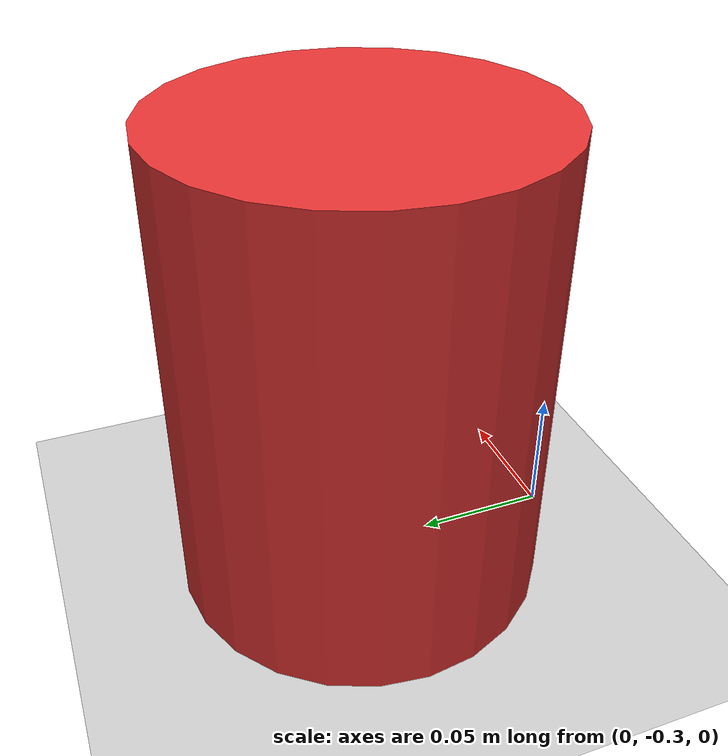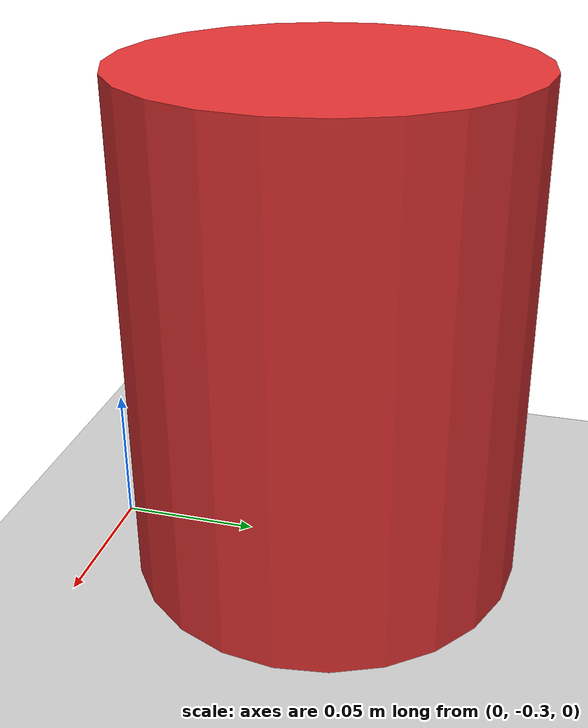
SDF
<?xml version="1.0" ?>
<sdf version="1.10">
  <world name="obstacle_world">
    <physics name="1ms" type="ignored">
      <max_step_size>0.001</max_step_size>
      <real_time_factor>1.0</real_time_factor>
    </physics>
    <plugin filename="gz-sim-physics-system" name="gz::sim::systems::Physics"></plugin>
    <plugin filename="gz-sim-user-commands-system" name="gz::sim::systems::UserCommands"></plugin>
    <plugin filename="gz-sim-scene-broadcaster-system" name="gz::sim::systems::SceneBroadcaster"></plugin>
    <plugin filename="gz-sim-sensors-system" name="gz::sim::systems::Sensors">
      <render_engine>ogre2</render_engine>
    </plugin>

    <light type="directional" name="sun">
      <cast_shadows>true</cast_shadows>
      <pose>0 0 10 0 0 0</pose>
      <diffuse>0.8 0.8 0.8 1</diffuse>
      <specular>0.2 0.2 0.2 1</specular>
      <attenuation>
        <range>1000</range>
        <constant>0.9</constant>
        <linear>0.01</linear>
        <quadratic>0.001</quadratic>
      </attenuation>
      <direction>-0.5 0.1 -0.9</direction>
    </light>

    <model name="ground_plane">
      <static>true</static>
      <link name="link">
        <collision name="collision">
          <geometry>
            <plane>
              <normal>0 0 1</normal>
            </plane>
          </geometry>
        </collision>
        <visual name="visual">
          <geometry>
            <plane>
              <normal>0 0 1</normal>
              <size>100 100</size>
            </plane>
          </geometry>
          <material>
            <ambient>0.8 0.8 0.8 1</ambient>
            <diffuse>0.8 0.8 0.8 1</diffuse>
            <specular>0.8 0.8 0.8 1</specular>
          </material>
        </visual>
      </link>
    </model>

    <model name="obstacle_cylinder">
      <static>true</static>
      <pose>0.0 -0.22 0.09 0 0 0</pose>
      <link name="link">
        <collision name="collision">
          <geometry>
            <cylinder>
              <radius>0.07</radius>
              <length>0.18</length>
            </cylinder>
          </geometry>
        </collision>
        <visual name="visual">
          <geometry>
            <cylinder>
              <radius>0.07</radius>
              <length>0.18</length>
            </cylinder>
          </geometry>
          <material>
            <ambient>0.9 0.2 0.2 1</ambient>
            <diffuse>0.9 0.2 0.2 1</diffuse>
            <specular>0.3 0.3 0.3 1</specular>
          </material>
        </visual>
      </link>
    </model>
  </world>
</sdf>
